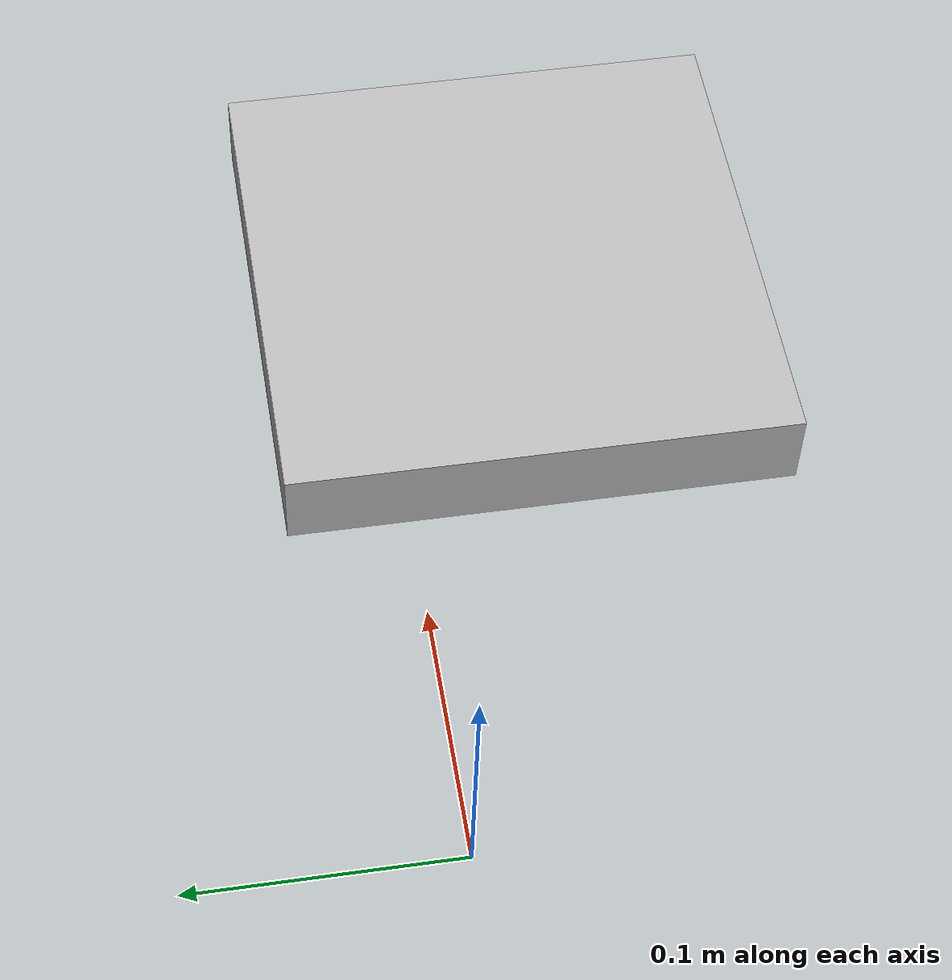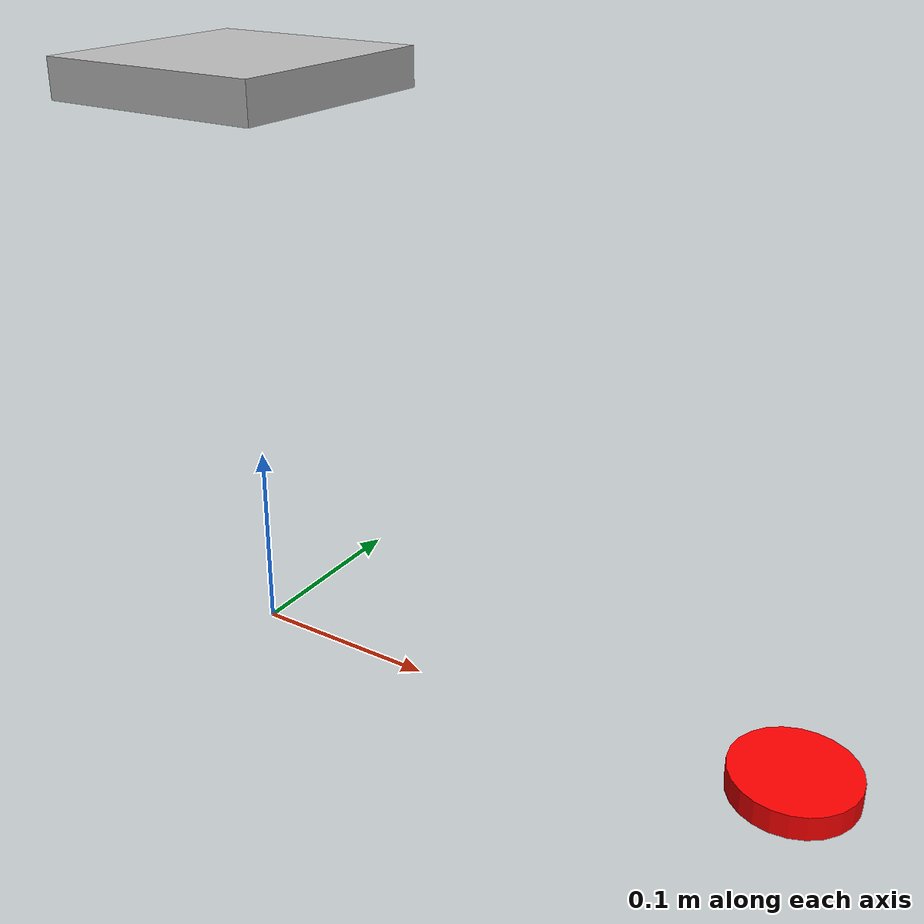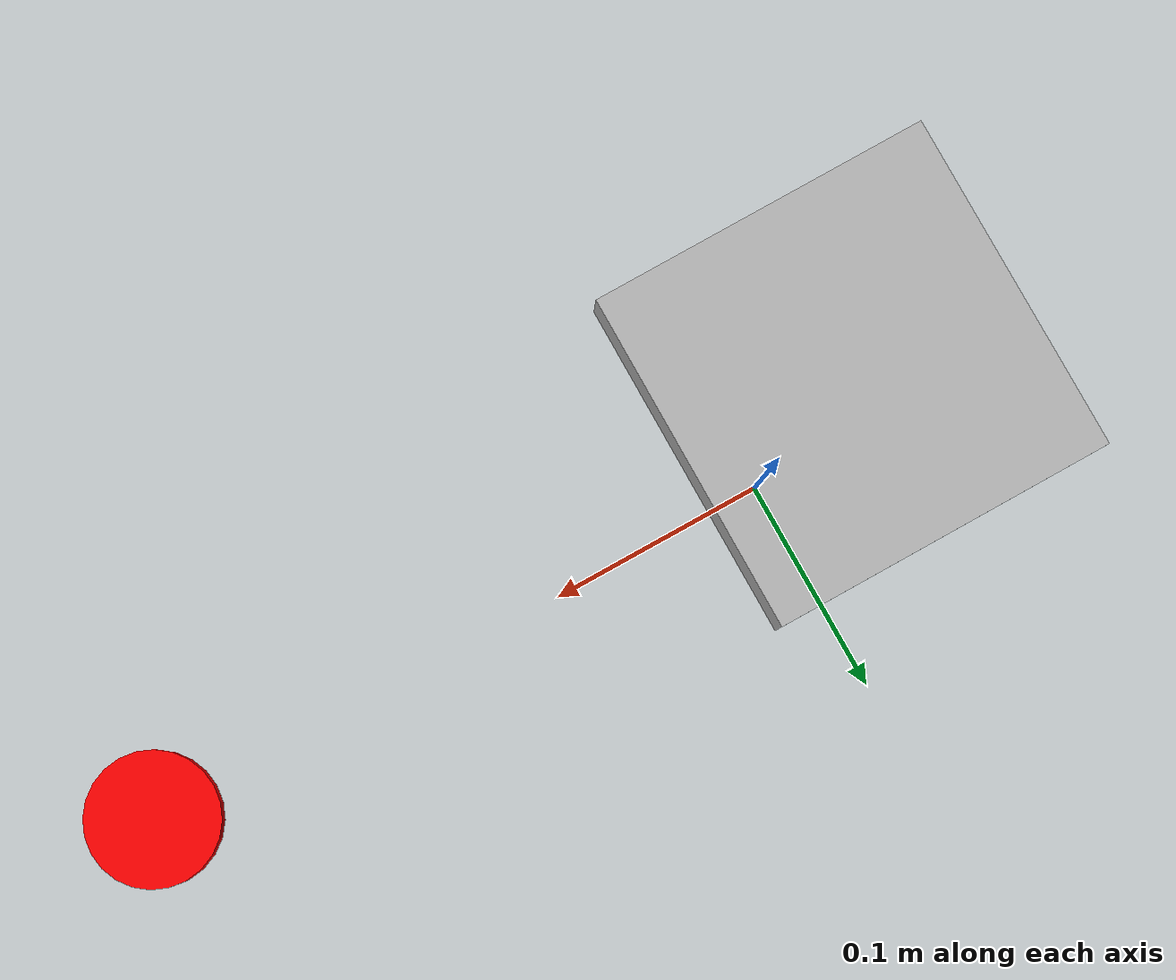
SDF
<?xml version="1.0"?>
<sdf version="1.7"><world name="gripper_test">
  <plugin filename="ignition-gazebo-physics-system" name="ignition::gazebo::systems::Physics"/>
  <plugin filename="ignition-gazebo-user-commands-system" name="ignition::gazebo::systems::UserCommands"/>
  <plugin filename="ignition-gazebo-contact-system" name="ignition::gazebo::systems::Contact"/>
  <gravity>0 0 -9.81</gravity>
  <model name="ground"><static>true</static><link name="ground">
    <collision name="ground"><geometry><box><size>4 4 0.1</size></box></geometry><pose>0 0 -0.05 0 0 0</pose></collision>
  </link></model>
  <model name="fixture"><static>true</static><pose>0 0 0.3 0 0 0</pose><link name="cup">
    <collision name="cup_collision"><geometry><box><size>0.12 0.12 0.02</size></box></geometry></collision>
    <visual name="cup"><geometry><box><size>0.12 0.12 0.02</size></box></geometry></visual>
  </link><plugin filename="librobotlab_contact_gripper.so" name="robotlab::ContactGripper">
    <parent_link>cup</parent_link><child_model>token</child_model><child_link>token_link</child_link>
  </plugin></model>
  <model name="token"><pose>0.3 0 0.02 0 0 0</pose><link name="token_link">
    <inertial><mass>0.02</mass><inertia><ixx>0.000005</ixx><iyy>0.000005</iyy><izz>0.000009</izz></inertia></inertial>
    <collision name="token_collision"><geometry><cylinder><radius>0.03</radius><length>0.012</length></cylinder></geometry></collision>
    <visual name="token"><geometry><cylinder><radius>0.03</radius><length>0.012</length></cylinder></geometry><material><diffuse>1 0 0 1</diffuse></material></visual>
  </link></model>
</world></sdf>
